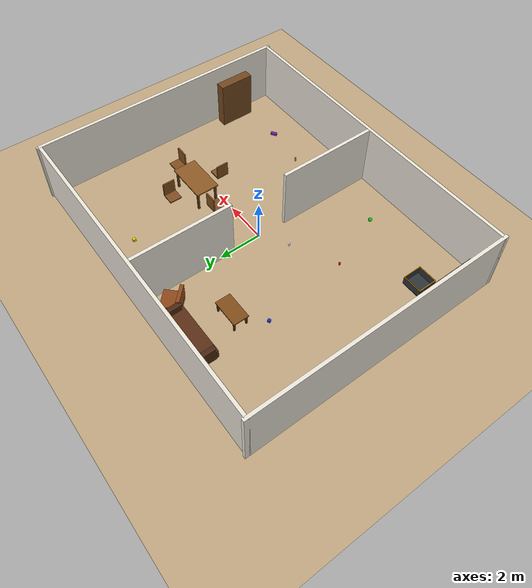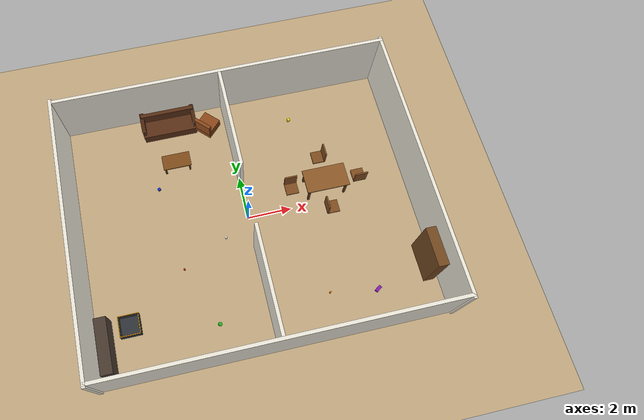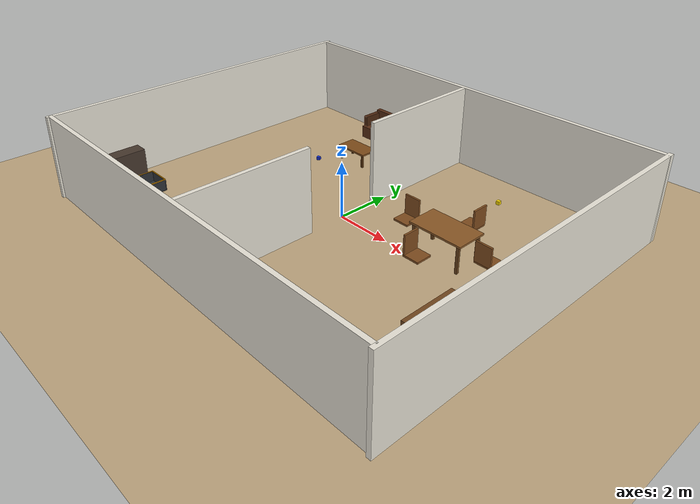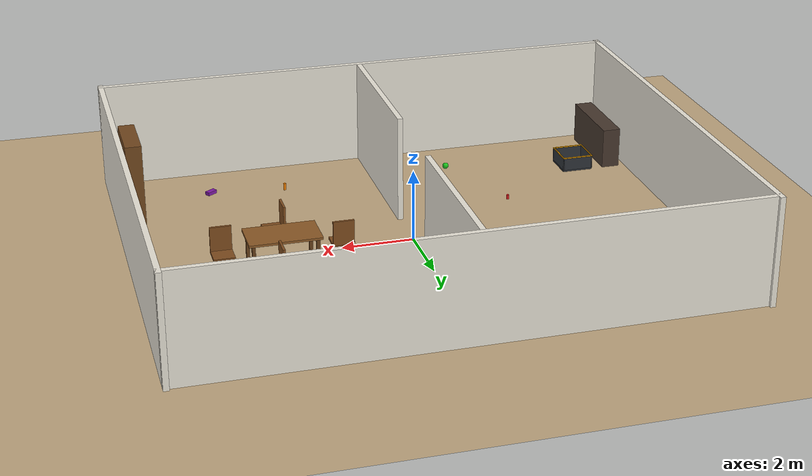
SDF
<?xml version="1.0" ?>
<sdf version="1.7">
  <world name="home_world">

    <physics name="1ms" type="ignored">
      <max_step_size>0.01</max_step_size>
      <real_time_factor>1.0</real_time_factor>
      <real_time_update_rate>1000</real_time_update_rate>
    </physics>
    <gravity>0 0 -9.81</gravity>
    <magnetic_field>6e-06 2.3e-05 -4.2e-05</magnetic_field>
    <atmosphere type="adiabatic"/>
    <plugin filename="gz-sim-physics-system" name="gz::sim::systems::Physics"/>
    <plugin filename="gz-sim-user-commands-system" name="gz::sim::systems::UserCommands"/>
    <plugin filename="gz-sim-scene-broadcaster-system" name="gz::sim::systems::SceneBroadcaster"/>
    <plugin filename="gz-sim-sensors-system" name="gz::sim::systems::Sensors">
      <render_engine>ogre2</render_engine>
    </plugin>
    <plugin filename="gz-sim-imu-system" name="gz::sim::systems::Imu">
    </plugin>
    <light type="directional" name="sun">
      <cast_shadows>true</cast_shadows>
      <pose>0 0 10 0 0 0</pose>
      <diffuse>0.85 0.85 0.8 1</diffuse>
      <specular>0.2 0.2 0.2 1</specular>
      <direction>-0.5 0.1 -0.9</direction>
    </light>

    <light type="point" name="light_room1">
      <pose>-3.75 0 3.0 0 0 0</pose>
      <diffuse>0.9 0.9 0.8 1</diffuse>
      <specular>0.1 0.1 0.1 1</specular>
      <attenuation>
        <range>18</range>
        <constant>0.4</constant>
        <linear>0.02</linear>
        <quadratic>0.001</quadratic>
      </attenuation>
      <cast_shadows>false</cast_shadows>
    </light>

    <light type="point" name="light_room2">
      <pose>3.75 0 3.0 0 0 0</pose>
      <diffuse>0.9 0.9 0.8 1</diffuse>
      <specular>0.1 0.1 0.1 1</specular>
      <attenuation>
        <range>18</range>
        <constant>0.4</constant>
        <linear>0.02</linear>
        <quadratic>0.001</quadratic>
      </attenuation>
      <cast_shadows>false</cast_shadows>
    </light>

    <model name="ground_plane">
      <static>true</static>
      <link name="link">
        <collision name="collision">
          <geometry>
            <plane>
              <normal>0 0 1</normal>
              <size>40 40</size>
            </plane>
          </geometry>
          <surface>
            <friction>
              <ode>
                <mu>0.8</mu>
                <mu2>0.8</mu2>
                <fdir1>1 0 0</fdir1>
                <slip1>0.0</slip1>
                <slip2>0.0</slip2>
              </ode>
              <torsional>
                <coefficient>0.5</coefficient>
                <use_patch_radius>true</use_patch_radius>
                <patch_radius>0.1</patch_radius>
              </torsional>
            </friction>
            <contact>
              <ode>
                <soft_cfm>0</soft_cfm>
                <soft_erp>0.2</soft_erp>
                <kp>1e+13</kp>
                <kd>1</kd>
                <max_vel>0.01</max_vel>
                <min_depth>0.001</min_depth>
              </ode>
            </contact>
          </surface>
        </collision>
        <visual name="visual">
          <cast_shadows>false</cast_shadows>
          <geometry>
            <plane>
              <normal>0 0 1</normal>
              <size>40 40</size>
            </plane>
          </geometry>
          <material>
            <ambient>0.75 0.65 0.5 1</ambient>
            <diffuse>0.75 0.65 0.5 1</diffuse>
            <specular>0.1 0.1 0.1 1</specular>
          </material>
        </visual>
      </link>
    </model>

    <model name="wall_west">
      <static>true</static>
      <pose>-7.575 0 1.5 0 0 0</pose>
      <link name="link">
        <collision name="col"><geometry><box><size>0.15 12.45 3.0</size></box></geometry></collision>
        <visual name="vis"><geometry><box><size>0.15 12.45 3.0</size></box></geometry>
          <material><ambient>0.92 0.9 0.85 1</ambient><diffuse>0.92 0.9 0.85 1</diffuse></material>
        </visual>
      </link>
    </model>

    <model name="wall_east">
      <static>true</static>
      <pose>7.575 0 1.5 0 0 0</pose>
      <link name="link">
        <collision name="col"><geometry><box><size>0.15 12.45 3.0</size></box></geometry></collision>
        <visual name="vis"><geometry><box><size>0.15 12.45 3.0</size></box></geometry>
          <material><ambient>0.92 0.9 0.85 1</ambient><diffuse>0.92 0.9 0.85 1</diffuse></material>
        </visual>
      </link>
    </model>

    <model name="wall_south">
      <static>true</static>
      <pose>0 -6.075 1.5 0 0 0</pose>
      <link name="link">
        <collision name="col"><geometry><box><size>15.3 0.15 3.0</size></box></geometry></collision>
        <visual name="vis"><geometry><box><size>15.3 0.15 3.0</size></box></geometry>
          <material><ambient>0.92 0.9 0.85 1</ambient><diffuse>0.92 0.9 0.85 1</diffuse></material>
        </visual>
      </link>
    </model>

    <model name="wall_north">
      <static>true</static>
      <pose>0 6.075 1.5 0 0 0</pose>
      <link name="link">
        <collision name="col"><geometry><box><size>15.3 0.15 3.0</size></box></geometry></collision>
        <visual name="vis"><geometry><box><size>15.3 0.15 3.0</size></box></geometry>
          <material><ambient>0.92 0.9 0.85 1</ambient><diffuse>0.92 0.9 0.85 1</diffuse></material>
        </visual>
      </link>
    </model>

    <model name="wall_shared_south">
      <static>true</static>
      <pose>0 -3.675 1.5 0 0 0</pose>
      <link name="link">
        <collision name="col"><geometry><box><size>0.15 4.65 3.0</size></box></geometry></collision>
        <visual name="vis"><geometry><box><size>0.15 4.65 3.0</size></box></geometry>
          <material><ambient>0.92 0.9 0.85 1</ambient><diffuse>0.92 0.9 0.85 1</diffuse></material>
        </visual>
      </link>
    </model>

    <model name="wall_shared_north">
      <static>true</static>
      <pose>0 3.675 1.5 0 0 0</pose>
      <link name="link">
        <collision name="col"><geometry><box><size>0.15 4.65 3.0</size></box></geometry></collision>
        <visual name="vis"><geometry><box><size>0.15 4.65 3.0</size></box></geometry>
          <material><ambient>0.92 0.9 0.85 1</ambient><diffuse>0.92 0.9 0.85 1</diffuse></material>
        </visual>
      </link>
    </model>

    <model name="couch">
      <static>true</static>
      <pose>-2.7 5.25 0 0 0 0</pose>
      <link name="link">
        <collision name="seat_col">
          <pose>0 0 0.365 0 0 0</pose>
          <geometry><box><size>2.47 0.975 0.455</size></box></geometry>
        </collision>
        <visual name="seat_vis">
          <pose>0 0 0.365 0 0 0</pose>
          <geometry><box><size>2.47 0.975 0.455</size></box></geometry>
          <material><ambient>0.35 0.18 0.08 1</ambient><diffuse>0.35 0.18 0.08 1</diffuse></material>
        </visual>
        <collision name="back_col">
          <pose>0 0.415 0.715 0 0 0</pose>
          <geometry><box><size>2.47 0.18 0.715</size></box></geometry>
        </collision>
        <visual name="back_vis">
          <pose>0 0.415 0.715 0 0 0</pose>
          <geometry><box><size>2.47 0.18 0.715</size></box></geometry>
          <material><ambient>0.35 0.18 0.08 1</ambient><diffuse>0.35 0.18 0.08 1</diffuse></material>
        </visual>
        <collision name="arm_l_col">
          <pose>1.195 0.13 0.585 0 0 0</pose>
          <geometry><box><size>0.18 0.975 0.78</size></box></geometry>
        </collision>
        <visual name="arm_l_vis">
          <pose>1.195 0.13 0.585 0 0 0</pose>
          <geometry><box><size>0.18 0.975 0.78</size></box></geometry>
          <material><ambient>0.3 0.15 0.06 1</ambient><diffuse>0.3 0.15 0.06 1</diffuse></material>
        </visual>
        <collision name="arm_r_col">
          <pose>-1.195 0.13 0.585 0 0 0</pose>
          <geometry><box><size>0.18 0.975 0.78</size></box></geometry>
        </collision>
        <visual name="arm_r_vis">
          <pose>-1.195 0.13 0.585 0 0 0</pose>
          <geometry><box><size>0.18 0.975 0.78</size></box></geometry>
          <material><ambient>0.3 0.15 0.06 1</ambient><diffuse>0.3 0.15 0.06 1</diffuse></material>
        </visual>
      </link>
    </model>

    <model name="coffee_table">
      <static>true</static>
      <pose>-2.7 3.3 0 0 0 0</pose>
      <link name="link">
        <collision name="top_col">
          <pose>0 0 0.52 0 0 0</pose>
          <geometry><box><size>1.3 0.715 0.065</size></box></geometry>
        </collision>
        <visual name="top_vis">
          <pose>0 0 0.52 0 0 0</pose>
          <geometry><box><size>1.3 0.715 0.065</size></box></geometry>
          <material><ambient>0.5 0.3 0.1 1</ambient><diffuse>0.5 0.3 0.1 1</diffuse></material>
        </visual>
        <collision name="leg1"><pose>0.559  0.286 0.26 0 0 0</pose><geometry><box><size>0.078 0.078 0.52</size></box></geometry></collision>
        <visual    name="lv1"> <pose>0.559  0.286 0.26 0 0 0</pose><geometry><box><size>0.078 0.078 0.52</size></box></geometry><material><ambient>0.35 0.2 0.05 1</ambient><diffuse>0.35 0.2 0.05 1</diffuse></material></visual>
        <collision name="leg2"><pose>-0.559  0.286 0.26 0 0 0</pose><geometry><box><size>0.078 0.078 0.52</size></box></geometry></collision>
        <visual    name="lv2"> <pose>-0.559  0.286 0.26 0 0 0</pose><geometry><box><size>0.078 0.078 0.52</size></box></geometry><material><ambient>0.35 0.2 0.05 1</ambient><diffuse>0.35 0.2 0.05 1</diffuse></material></visual>
        <collision name="leg3"><pose>0.559 -0.286 0.26 0 0 0</pose><geometry><box><size>0.078 0.078 0.52</size></box></geometry></collision>
        <visual    name="lv3"> <pose>0.559 -0.286 0.26 0 0 0</pose><geometry><box><size>0.078 0.078 0.52</size></box></geometry><material><ambient>0.35 0.2 0.05 1</ambient><diffuse>0.35 0.2 0.05 1</diffuse></material></visual>
        <collision name="leg4"><pose>-0.559 -0.286 0.26 0 0 0</pose><geometry><box><size>0.078 0.078 0.52</size></box></geometry></collision>
        <visual    name="lv4"> <pose>-0.559 -0.286 0.26 0 0 0</pose><geometry><box><size>0.078 0.078 0.52</size></box></geometry><material><ambient>0.35 0.2 0.05 1</ambient><diffuse>0.35 0.2 0.05 1</diffuse></material></visual>
      </link>
    </model>

    <model name="armchair">
      <static>true</static>
      <pose>-0.9 4.95 0 0 0 2.356</pose>
      <link name="link">
        <collision name="seat_col">
          <pose>0 0 0.325 0 0 0</pose>
          <geometry><box><size>0.845 0.845 0.455</size></box></geometry>
        </collision>
        <visual name="seat_vis">
          <pose>0 0 0.325 0 0 0</pose>
          <geometry><box><size>0.845 0.845 0.455</size></box></geometry>
          <material><ambient>0.55 0.28 0.1 1</ambient><diffuse>0.55 0.28 0.1 1</diffuse></material>
        </visual>
        <collision name="back_col">
          <pose>0 0.364 0.715 0 0 0</pose>
          <geometry><box><size>0.845 0.156 0.65</size></box></geometry>
        </collision>
        <visual name="back_vis">
          <pose>0 0.364 0.715 0 0 0</pose>
          <geometry><box><size>0.845 0.156 0.65</size></box></geometry>
          <material><ambient>0.55 0.28 0.1 1</ambient><diffuse>0.55 0.28 0.1 1</diffuse></material>
        </visual>
      </link>
    </model>

    <model name="tv_cabinet">
      <static>true</static>
      <pose>-7.05 -4.5 0.585 0 0 0</pose>
      <link name="link">
        <collision name="col"><geometry><box><size>0.52 2.34 1.17</size></box></geometry></collision>
        <visual name="vis"><geometry><box><size>0.52 2.34 1.17</size></box></geometry>
          <material><ambient>0.28 0.22 0.18 1</ambient><diffuse>0.28 0.22 0.18 1</diffuse></material>
        </visual>
      </link>
    </model>

    <model name="dining_table">
      <static>true</static>
      <pose>3.75 0.75 0 0 0 0</pose>
      <link name="link">
        <collision name="top_col">
          <pose>0 0 0.975 0 0 0</pose>
          <geometry><box><size>1.95 1.105 0.065</size></box></geometry>
        </collision>
        <visual name="top_vis">
          <pose>0 0 0.975 0 0 0</pose>
          <geometry><box><size>1.95 1.105 0.065</size></box></geometry>
          <material><ambient>0.55 0.35 0.15 1</ambient><diffuse>0.55 0.35 0.15 1</diffuse></material>
        </visual>
        <collision name="leg1"><pose>0.845  0.455 0.4875 0 0 0</pose><geometry><box><size>0.091 0.091 0.975</size></box></geometry></collision>
        <visual    name="lv1"> <pose>0.845  0.455 0.4875 0 0 0</pose><geometry><box><size>0.091 0.091 0.975</size></box></geometry><material><ambient>0.4 0.25 0.1 1</ambient><diffuse>0.4 0.25 0.1 1</diffuse></material></visual>
        <collision name="leg2"><pose>-0.845  0.455 0.4875 0 0 0</pose><geometry><box><size>0.091 0.091 0.975</size></box></geometry></collision>
        <visual    name="lv2"> <pose>-0.845  0.455 0.4875 0 0 0</pose><geometry><box><size>0.091 0.091 0.975</size></box></geometry><material><ambient>0.4 0.25 0.1 1</ambient><diffuse>0.4 0.25 0.1 1</diffuse></material></visual>
        <collision name="leg3"><pose>0.845 -0.455 0.4875 0 0 0</pose><geometry><box><size>0.091 0.091 0.975</size></box></geometry></collision>
        <visual    name="lv3"> <pose>0.845 -0.455 0.4875 0 0 0</pose><geometry><box><size>0.091 0.091 0.975</size></box></geometry><material><ambient>0.4 0.25 0.1 1</ambient><diffuse>0.4 0.25 0.1 1</diffuse></material></visual>
        <collision name="leg4"><pose>-0.845 -0.455 0.4875 0 0 0</pose><geometry><box><size>0.091 0.091 0.975</size></box></geometry></collision>
        <visual    name="lv4"> <pose>-0.845 -0.455 0.4875 0 0 0</pose><geometry><box><size>0.091 0.091 0.975</size></box></geometry><material><ambient>0.4 0.25 0.1 1</ambient><diffuse>0.4 0.25 0.1 1</diffuse></material></visual>
      </link>
    </model>

    <model name="chair_west">
      <static>true</static>
      <pose>2.175 0.75 0 0 0 0</pose>
      <link name="link">
        <collision name="seat_col"><pose>0 0 0.572 0 0 0</pose><geometry><box><size>0.572 0.572 0.065</size></box></geometry></collision>
        <visual    name="seat_vis"><pose>0 0 0.572 0 0 0</pose><geometry><box><size>0.572 0.572 0.065</size></box></geometry><material><ambient>0.5 0.3 0.12 1</ambient><diffuse>0.5 0.3 0.12 1</diffuse></material></visual>
        <collision name="back_col"><pose>0 0.26 0.936 0 0 0</pose><geometry><box><size>0.572 0.065 0.676</size></box></geometry></collision>
        <visual    name="back_vis"><pose>0 0.26 0.936 0 0 0</pose><geometry><box><size>0.572 0.065 0.676</size></box></geometry><material><ambient>0.5 0.3 0.12 1</ambient><diffuse>0.5 0.3 0.12 1</diffuse></material></visual>
      </link>
    </model>

    <model name="chair_east">
      <static>true</static>
      <pose>5.325 0.75 0 0 0 3.14159</pose>
      <link name="link">
        <collision name="seat_col"><pose>0 0 0.572 0 0 0</pose><geometry><box><size>0.572 0.572 0.065</size></box></geometry></collision>
        <visual    name="seat_vis"><pose>0 0 0.572 0 0 0</pose><geometry><box><size>0.572 0.572 0.065</size></box></geometry><material><ambient>0.5 0.3 0.12 1</ambient><diffuse>0.5 0.3 0.12 1</diffuse></material></visual>
        <collision name="back_col"><pose>0 0.26 0.936 0 0 0</pose><geometry><box><size>0.572 0.065 0.676</size></box></geometry></collision>
        <visual    name="back_vis"><pose>0 0.26 0.936 0 0 0</pose><geometry><box><size>0.572 0.065 0.676</size></box></geometry><material><ambient>0.5 0.3 0.12 1</ambient><diffuse>0.5 0.3 0.12 1</diffuse></material></visual>
      </link>
    </model>

    <model name="chair_north">
      <static>true</static>
      <pose>3.75 2.015 0 0 0 -1.5708</pose>
      <link name="link">
        <collision name="seat_col"><pose>0 0 0.572 0 0 0</pose><geometry><box><size>0.572 0.572 0.065</size></box></geometry></collision>
        <visual    name="seat_vis"><pose>0 0 0.572 0 0 0</pose><geometry><box><size>0.572 0.572 0.065</size></box></geometry><material><ambient>0.5 0.3 0.12 1</ambient><diffuse>0.5 0.3 0.12 1</diffuse></material></visual>
        <collision name="back_col"><pose>0 0.26 0.936 0 0 0</pose><geometry><box><size>0.572 0.065 0.676</size></box></geometry></collision>
        <visual    name="back_vis"><pose>0 0.26 0.936 0 0 0</pose><geometry><box><size>0.572 0.065 0.676</size></box></geometry><material><ambient>0.5 0.3 0.12 1</ambient><diffuse>0.5 0.3 0.12 1</diffuse></material></visual>
      </link>
    </model>

    <model name="chair_south">
      <static>true</static>
      <pose>3.75 -0.515 0 0 0 1.5708</pose>
      <link name="link">
        <collision name="seat_col"><pose>0 0 0.572 0 0 0</pose><geometry><box><size>0.572 0.572 0.065</size></box></geometry></collision>
        <visual    name="seat_vis"><pose>0 0 0.572 0 0 0</pose><geometry><box><size>0.572 0.572 0.065</size></box></geometry><material><ambient>0.5 0.3 0.12 1</ambient><diffuse>0.5 0.3 0.12 1</diffuse></material></visual>
        <collision name="back_col"><pose>0 0.26 0.936 0 0 0</pose><geometry><box><size>0.572 0.065 0.676</size></box></geometry></collision>
        <visual    name="back_vis"><pose>0 0.26 0.936 0 0 0</pose><geometry><box><size>0.572 0.065 0.676</size></box></geometry><material><ambient>0.5 0.3 0.12 1</ambient><diffuse>0.5 0.3 0.12 1</diffuse></material></visual>
      </link>
    </model>

    <model name="bookshelf">
      <static>true</static>
      <pose>7.08 -3.75 0 0 0 0</pose>
      <link name="link">
        <collision name="body_col">
          <pose>0 0 1.17 0 0 0</pose>
          <geometry><box><size>0.455 1.69 2.34</size></box></geometry>
        </collision>
        <visual name="body_vis">
          <pose>0 0 1.17 0 0 0</pose>
          <geometry><box><size>0.455 1.69 2.34</size></box></geometry>
          <material><ambient>0.45 0.28 0.12 1</ambient><diffuse>0.45 0.28 0.12 1</diffuse></material>
        </visual>
        <visual name="shelf1"><pose>0 0 0.715 0 0 0</pose><geometry><box><size>0.429 1.664 0.039</size></box></geometry><material><ambient>0.55 0.35 0.15 1</ambient><diffuse>0.55 0.35 0.15 1</diffuse></material></visual>
        <visual name="shelf2"><pose>0 0 1.235 0 0 0</pose><geometry><box><size>0.429 1.664 0.039</size></box></geometry><material><ambient>0.55 0.35 0.15 1</ambient><diffuse>0.55 0.35 0.15 1</diffuse></material></visual>
        <visual name="shelf3"><pose>0 0 1.755 0 0 0</pose><geometry><box><size>0.429 1.664 0.039</size></box></geometry><material><ambient>0.55 0.35 0.15 1</ambient><diffuse>0.55 0.35 0.15 1</diffuse></material></visual>
      </link>
    </model>

    <model name="collection_bin">
      <static>true</static>
      <pose>-6.0 -3.75 0 0 0 0</pose>
      <link name="link">
        <collision name="floor_col">
          <pose>0 0 0.025 0 0 0</pose>
          <geometry><box><size>0.9 0.9 0.05</size></box></geometry>
        </collision>
        <visual name="floor_vis">
          <pose>0 0 0.025 0 0 0</pose>
          <geometry><box><size>0.9 0.9 0.05</size></box></geometry>
          <material><ambient>0.18 0.2 0.22 1</ambient><diffuse>0.18 0.2 0.22 1</diffuse><specular>0.4 0.4 0.4 1</specular></material>
        </visual>
        <collision name="wall_s_col">
          <pose>0 -0.435 0.225 0 0 0</pose>
          <geometry><box><size>0.9 0.03 0.4</size></box></geometry>
        </collision>
        <visual name="wall_s_vis">
          <pose>0 -0.435 0.225 0 0 0</pose>
          <geometry><box><size>0.9 0.03 0.4</size></box></geometry>
          <material><ambient>0.18 0.2 0.22 1</ambient><diffuse>0.18 0.2 0.22 1</diffuse><specular>0.4 0.4 0.4 1</specular></material>
        </visual>
        <collision name="wall_n_col">
          <pose>0 0.435 0.225 0 0 0</pose>
          <geometry><box><size>0.9 0.03 0.4</size></box></geometry>
        </collision>
        <visual name="wall_n_vis">
          <pose>0 0.435 0.225 0 0 0</pose>
          <geometry><box><size>0.9 0.03 0.4</size></box></geometry>
          <material><ambient>0.18 0.2 0.22 1</ambient><diffuse>0.18 0.2 0.22 1</diffuse><specular>0.4 0.4 0.4 1</specular></material>
        </visual>
        <collision name="wall_w_col">
          <pose>-0.435 0 0.225 0 0 0</pose>
          <geometry><box><size>0.03 0.9 0.4</size></box></geometry>
        </collision>
        <visual name="wall_w_vis">
          <pose>-0.435 0 0.225 0 0 0</pose>
          <geometry><box><size>0.03 0.9 0.4</size></box></geometry>
          <material><ambient>0.18 0.2 0.22 1</ambient><diffuse>0.18 0.2 0.22 1</diffuse><specular>0.4 0.4 0.4 1</specular></material>
        </visual>
        <collision name="wall_e_col">
          <pose>0.435 0 0.225 0 0 0</pose>
          <geometry><box><size>0.03 0.9 0.4</size></box></geometry>
        </collision>
        <visual name="wall_e_vis">
          <pose>0.435 0 0.225 0 0 0</pose>
          <geometry><box><size>0.03 0.9 0.4</size></box></geometry>
          <material><ambient>0.18 0.2 0.22 1</ambient><diffuse>0.18 0.2 0.22 1</diffuse><specular>0.4 0.4 0.4 1</specular></material>
        </visual>
        <visual name="stripe_s">
          <pose>0 -0.436 0.42 0 0 0</pose>
          <geometry><box><size>0.9 0.032 0.03</size></box></geometry>
          <material><ambient>0.9 0.6 0.0 1</ambient><diffuse>0.9 0.6 0.0 1</diffuse></material>
        </visual>
        <visual name="stripe_n">
          <pose>0 0.436 0.42 0 0 0</pose>
          <geometry><box><size>0.9 0.032 0.03</size></box></geometry>
          <material><ambient>0.9 0.6 0.0 1</ambient><diffuse>0.9 0.6 0.0 1</diffuse></material>
        </visual>
        <visual name="stripe_w">
          <pose>-0.436 0 0.42 0 0 0</pose>
          <geometry><box><size>0.032 0.9 0.03</size></box></geometry>
          <material><ambient>0.9 0.6 0.0 1</ambient><diffuse>0.9 0.6 0.0 1</diffuse></material>
        </visual>
        <visual name="stripe_e">
          <pose>0.436 0 0.42 0 0 0</pose>
          <geometry><box><size>0.032 0.9 0.03</size></box></geometry>
          <material><ambient>0.9 0.6 0.0 1</ambient><diffuse>0.9 0.6 0.0 1</diffuse></material>
        </visual>
      </link>
    </model>

    <model name="obj_can_red">
      <pose>-3.3 -1.8 0.1 0 0 0</pose>
      <link name="link">
        <inertial><mass>0.12</mass>
          <inertia><ixx>0.00012</ixx><ixy>0</ixy><ixz>0</ixz><iyy>0.00012</iyy><iyz>0</iyz><izz>0.00006</izz></inertia>
        </inertial>
        <collision name="col"><geometry><cylinder><radius>0.04</radius><length>0.13</length></cylinder></geometry>
          <surface><friction><ode><mu>0.6</mu><mu2>0.6</mu2></ode></friction></surface>
        </collision>
        <visual name="vis"><geometry><cylinder><radius>0.04</radius><length>0.13</length></cylinder></geometry>
          <material><ambient>0.85 0.1 0.1 1</ambient><diffuse>0.85 0.1 0.1 1</diffuse></material>
        </visual>
      </link>
    </model>

    <model name="obj_block_blue">
      <pose>-3.75 2.25 0.06 0 0 0.4</pose>
      <link name="link">
        <inertial><mass>0.15</mass>
          <inertia><ixx>0.00012</ixx><ixy>0</ixy><ixz>0</ixz><iyy>0.00012</iyy><iyz>0</iyz><izz>0.00012</izz></inertia>
        </inertial>
        <collision name="col"><geometry><box><size>0.12 0.12 0.12</size></box></geometry>
          <surface><friction><ode><mu>0.65</mu><mu2>0.65</mu2></ode></friction></surface>
        </collision>
        <visual name="vis"><geometry><box><size>0.12 0.12 0.12</size></box></geometry>
          <material><ambient>0.1 0.2 0.85 1</ambient><diffuse>0.1 0.2 0.85 1</diffuse></material>
        </visual>
      </link>
    </model>

    <model name="obj_ball_green">
      <pose>-2.25 -4.5 0.09 0 0 0</pose>
      <link name="link">
        <inertial><mass>0.08</mass>
          <inertia><ixx>0.00006</ixx><ixy>0</ixy><ixz>0</ixz><iyy>0.00006</iyy><iyz>0</iyz><izz>0.00006</izz></inertia>
        </inertial>
        <collision name="col"><geometry><sphere><radius>0.09</radius></sphere></geometry>
          <surface><friction><ode><mu>0.45</mu><mu2>0.45</mu2></ode></friction></surface>
        </collision>
        <visual name="vis"><geometry><sphere><radius>0.09</radius></sphere></geometry>
          <material><ambient>0.1 0.75 0.1 1</ambient><diffuse>0.1 0.75 0.1 1</diffuse></material>
        </visual>
      </link>
    </model>

    <model name="obj_cup_white">
      <pose>-1.2 -0.75 0.09 0 0 0</pose>
      <link name="link">
        <inertial><mass>0.09</mass>
          <inertia><ixx>0.00008</ixx><ixy>0</ixy><ixz>0</ixz><iyy>0.00008</iyy><iyz>0</iyz><izz>0.00004</izz></inertia>
        </inertial>
        <collision name="col"><geometry><cylinder><radius>0.045</radius><length>0.15</length></cylinder></geometry>
          <surface><friction><ode><mu>0.55</mu><mu2>0.55</mu2></ode></friction></surface>
        </collision>
        <visual name="vis"><geometry><cylinder><radius>0.045</radius><length>0.15</length></cylinder></geometry>
          <material><ambient>0.95 0.95 0.95 1</ambient><diffuse>0.95 0.95 0.95 1</diffuse></material>
        </visual>
      </link>
    </model>

    <model name="obj_bottle_orange">
      <pose>2.7 -4.2 0.12 0 0 0</pose>
      <link name="link">
        <inertial><mass>0.13</mass>
          <inertia><ixx>0.00013</ixx><ixy>0</ixy><ixz>0</ixz><iyy>0.00013</iyy><iyz>0</iyz><izz>0.00004</izz></inertia>
        </inertial>
        <collision name="col"><geometry><cylinder><radius>0.038</radius><length>0.2</length></cylinder></geometry>
          <surface><friction><ode><mu>0.6</mu><mu2>0.6</mu2></ode></friction></surface>
        </collision>
        <visual name="vis"><geometry><cylinder><radius>0.038</radius><length>0.2</length></cylinder></geometry>
          <material><ambient>0.95 0.5 0.0 1</ambient><diffuse>0.95 0.5 0.0 1</diffuse></material>
        </visual>
      </link>
    </model>

    <model name="obj_shoebox_purple">
      <pose>4.8 -4.5 0.06 0 0 0.6</pose>
      <link name="link">
        <inertial><mass>0.22</mass>
          <inertia><ixx>0.00025</ixx><ixy>0</ixy><ixz>0</ixz><iyy>0.00035</iyy><iyz>0</iyz><izz>0.00045</izz></inertia>
        </inertial>
        <collision name="col"><geometry><box><size>0.3 0.15 0.1</size></box></geometry>
          <surface><friction><ode><mu>0.65</mu><mu2>0.65</mu2></ode></friction></surface>
        </collision>
        <visual name="vis"><geometry><box><size>0.3 0.15 0.1</size></box></geometry>
          <material><ambient>0.5 0.1 0.65 1</ambient><diffuse>0.5 0.1 0.65 1</diffuse></material>
        </visual>
      </link>
    </model>

    <model name="obj_box_yellow">
      <pose>3.0 4.5 0.07 0 0 0</pose>
      <link name="link">
        <inertial><mass>0.1</mass>
          <inertia><ixx>0.00010</ixx><ixy>0</ixy><ixz>0</ixz><iyy>0.00010</iyy><iyz>0</iyz><izz>0.00010</izz></inertia>
        </inertial>
        <collision name="col"><geometry><box><size>0.13 0.13 0.13</size></box></geometry>
          <surface><friction><ode><mu>0.6</mu><mu2>0.6</mu2></ode></friction></surface>
        </collision>
        <visual name="vis"><geometry><box><size>0.13 0.13 0.13</size></box></geometry>
          <material><ambient>0.95 0.82 0.0 1</ambient><diffuse>0.95 0.82 0.0 1</diffuse></material>
        </visual>
      </link>
    </model>

  </world>
</sdf>
